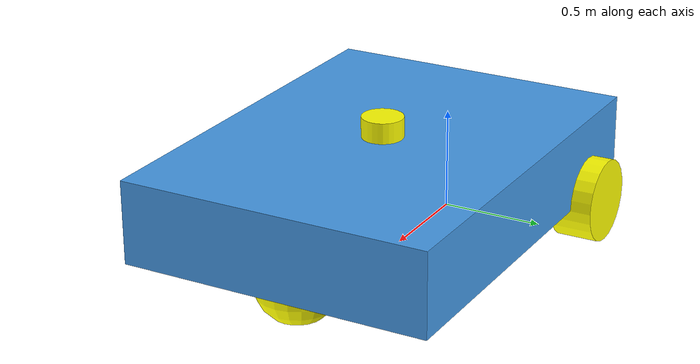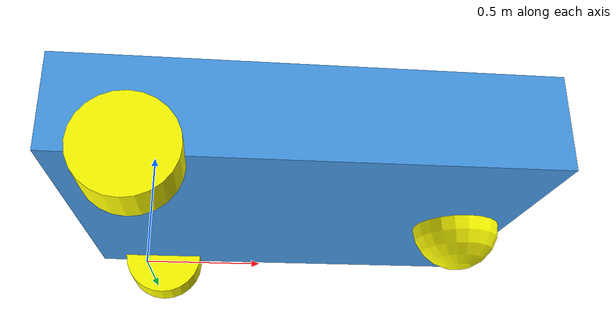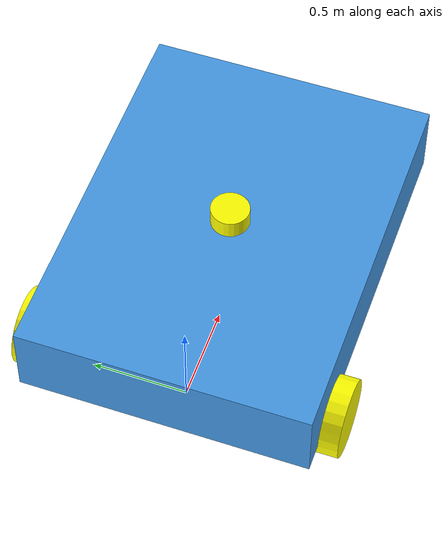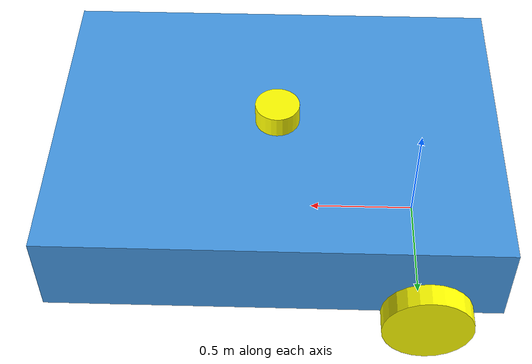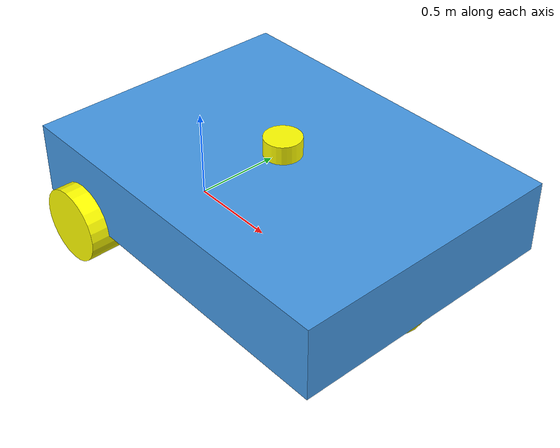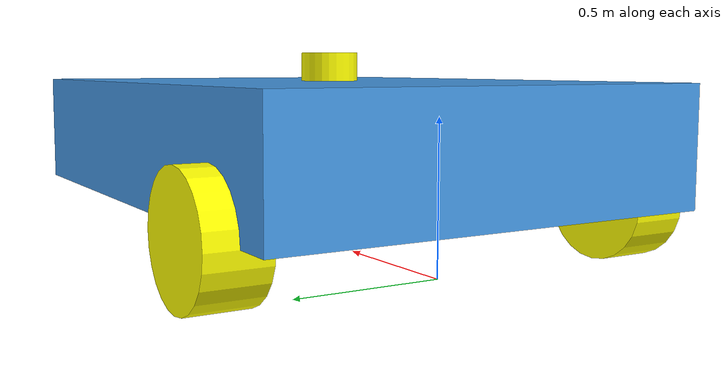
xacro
<?xml version="1.0"?>
<robot name="my_robot" xmlns:xacro="http://www.ros.org/wiki/xacro">

  <xacro:include filename="general_properties.urdf.xacro" />
  <xacro:include filename="mobile_base.urdf.xacro" />
   <xacro:include filename="lidar.urdf.xacro" />
  <xacro:include filename="mobile_base_gazebo.urdf.xacro" />

</robot>

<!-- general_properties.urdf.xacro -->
<robot xmlns:xacro="http://www.ros.org/wiki/xacro">

  <material name="yellow">
    <color rgba="1 1 0 1" />
  </material>

  <material name="blue">
    <color rgba="0.27 0.6 0.9 0.9" />
  </material>

  <xacro:macro name="box_inertia" params="m x y z o_xyz o_rpy">
    <inertial>
      <mass value="${m}" />
      <origin xyz="${o_xyz}" rpy="${o_rpy}" />
      <inertia ixx="${(m/12) * (y*y + z*z)}" ixy="0" ixz="0"
               iyy="${(m/12) * (x*x + z*z)}" iyz="0"
               izz="${(m/12) * (x*x + y*y)}" />
    </inertial>
  </xacro:macro>

  <xacro:macro name="cylinder_inertia" params="m r l o_xyz o_rpy">
    <inertial>
      <mass value="${m}" />
      <origin xyz="${o_xyz}" rpy="${o_rpy}" />
      <inertia ixx="${(m/12) * (3*r*r + l*l)}" ixy="0" ixz="0"
               iyy="${(m/12) * (3*r*r + l*l)}" iyz="0"
               izz="${(m/2) * (r*r)}" />
    </inertial>
  </xacro:macro>

  <xacro:macro name="sphere_inertia" params="m r o_xyz o_rpy">
    <inertial>
      <mass value="${m}" />
      <origin xyz="${o_xyz}" rpy="${o_rpy}" />
      <inertia ixx="${(2/5)*m*r*r}" ixy="0" ixz="0"
               iyy="${(2/5)*m*r*r}" iyz="0"
               izz="${(2/5)*m*r*r}" />
    </inertial>
  </xacro:macro>

</robot>

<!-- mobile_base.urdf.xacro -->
<robot xmlns:xacro="http://www.ros.org/wiki/xacro">

  <xacro:property name="base_length" value="2" />
  <xacro:property name="base_width" value="1.5" />
  <xacro:property name="base_height" value="0.4" />
  <xacro:property name="wheel_radius" value="${(base_height * (4/4)) / 2}" />
  <xacro:property name="wheel_length" value="0.2" />

  <link name="base_link">
    <visual>
      <geometry>
        <box size="${base_length} ${base_width} ${base_height}" />
      </geometry>
      <origin xyz="0 0 ${base_height / 2.0}" rpy="0 0 0" />
      <material name="blue" />
    </visual>

    <collision>
      <geometry>
        <box size="${base_length} ${base_width} ${base_height}" />
      </geometry>
      <origin xyz="0 0 ${base_height / 2.0}" rpy="0 0 0" />
    </collision>

    <xacro:box_inertia m="10.0" x="${base_length}" y="${base_width}" z="${base_height}"
                       o_xyz="0 0 ${base_height / 2.0}" o_rpy="0 0 0" />
  </link>

  <xacro:macro name="wheel_link" params="prefix">
    <link name="${prefix}_wheel_link">
      <visual>
        <geometry>
          <cylinder radius="${wheel_radius}" length="${wheel_length}" />
        </geometry>
        <origin xyz="0 0 0" rpy="${pi / 2.0} 0 0" />
        <material name="yellow" />
      </visual>

      <collision>
        <geometry>
          <sphere radius="${wheel_radius}" />
        </geometry>
        <origin xyz="0 0 0" rpy="0 0 0" />
      </collision>

      <xacro:cylinder_inertia m="1.0" r="${wheel_radius}" l="${wheel_length}"
                              o_xyz="0 0 0" o_rpy="${pi / 2.0} 0 0" />
    </link>
  </xacro:macro>

  <xacro:wheel_link prefix="right_back" />
  <xacro:wheel_link prefix="left_back" />

  <link name="base_footprint">
  </link>

  <link name="front_wheel_link">
    <visual>
      <geometry>
        <sphere radius="${wheel_radius}" />
      </geometry>
      <origin xyz="0 0 0" rpy="0 0 0" />
      <material name="yellow" />
    </visual>

    <collision>
      <geometry>
        <sphere radius="${wheel_radius}" />
      </geometry>
      <origin xyz="0 0 0" rpy="0 0 0" />
    </collision>

    <xacro:sphere_inertia m="2" r="${wheel_radius}"
                          o_xyz="0 0 0" o_rpy="0 0 0" />
  </link>

  <joint name="base_front_wheel_joint" type="fixed">
    <parent link="base_link" />
    <child link="front_wheel_link" />
    <origin xyz="${base_length / 2.6} 0 0" rpy="0 0 0" />

  </joint>

  <joint name="base_right_back_wheel_joint" type="continuous">
    <parent link="base_link" />
    <child link="right_back_wheel_link" />
    <origin xyz="${-base_length / 3.0} ${-base_width / 2.0} 0" rpy="0 0 0" />
    <axis xyz="0 1 0" />
  </joint>

  <joint name="base_left_back_wheel_joint" type="continuous">
    <parent link="base_link" />
    <child link="left_back_wheel_link" />
    <origin xyz="${-base_length / 3.0} ${base_width / 2.0} 0" rpy="0 0 0" />
    <axis xyz="0 1 0" />
  </joint>

  <joint name="base_joint" type="fixed">
    <parent link="base_footprint" />
    <child link="base_link" />
    <origin xyz="${base_length / 3.0} 0 ${(base_height * (4/4)) / 2}" rpy="0 0 0" />
    <axis xyz="0 0 0" />
  </joint>

</robot>

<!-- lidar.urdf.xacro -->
<robot xmlns:xacro="http://www.ros.org/wiki/xacro">

  <xacro:property name="lidar_radius" value="0.1" />
  <xacro:property name="lidar_length" value="0.1" />

  <link name="lidar_link">
    <visual>
      <geometry>
        <cylinder radius="${lidar_radius}" length="${lidar_length}" />
      </geometry>
      <origin xyz="0 0 0" rpy="0 0 0" />
      <material name="yellow" />
    </visual>

    <collision>
      <geometry>
        <cylinder radius="${lidar_radius}" length="${lidar_length}" />
      </geometry>
    </collision>

    <xacro:cylinder_inertia m="0.5" r="${lidar_radius}" l="${lidar_length}"
                            o_xyz="0 0 0" o_rpy="${pi / 2.0} 0 0" />
  </link>

  <joint name="base_lidar_joint" type="fixed">
    <parent link="base_link" />
    <child link="lidar_link" />
    <origin xyz="0 0 ${base_height + (1/2) * lidar_length}" rpy="0 0 0" />
  </joint>
</robot>
